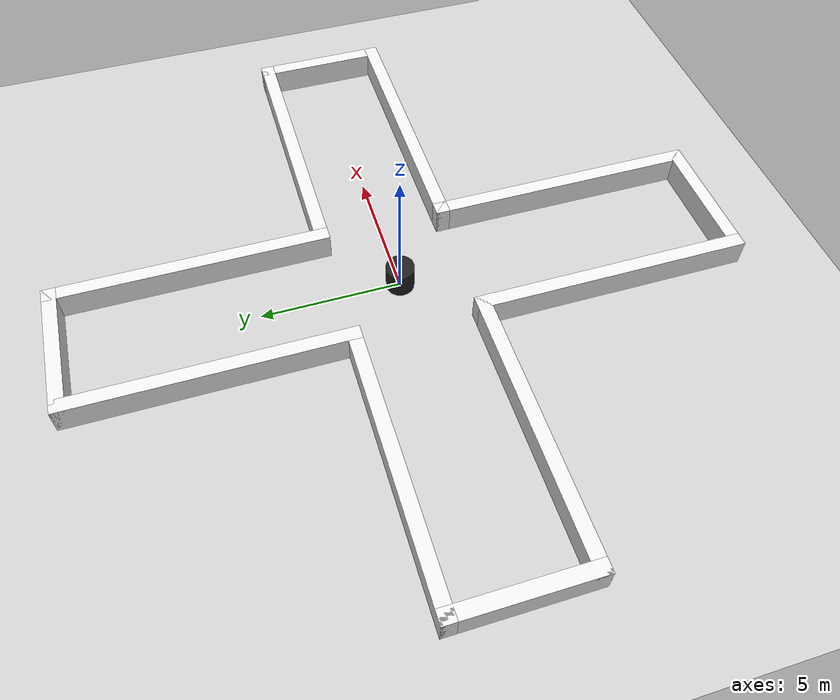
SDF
<?xml version="1.0"?>
<sdf version='1.6'>
  <world name='default'>
    <light name='sun' type='directional'>
      <cast_shadows>1</cast_shadows>
      <pose frame=''>0 0 10 0 -0 0</pose>
      <diffuse>0.8 0.8 0.8 1</diffuse>
      <specular>0.1 0.1 0.1 1</specular>
      <attenuation>
        <range>1000</range>
        <constant>0.9</constant>
        <linear>0.01</linear>
        <quadratic>0.001</quadratic>
      </attenuation>
      <direction>-0.5 0.5 -1</direction>
    </light>
    <model name='ground_plane'>
      <static>1</static>
      <link name='link'>
        <collision name='collision'>
          <geometry>
            <plane>
              <normal>0 0 1</normal>
              <size>100 100</size>
            </plane>
          </geometry>
          <surface>
            <friction>
              <ode>
                <mu>100</mu>
                <mu2>50</mu2>
              </ode>
              <torsional>
                <ode/>
              </torsional>
            </friction>
            <contact>
              <ode/>
            </contact>
            <bounce/>
          </surface>
          <max_contacts>10</max_contacts>
        </collision>
        <visual name='visual'>
          <cast_shadows>0</cast_shadows>
          <geometry>
            <plane>
              <normal>0 0 1</normal>
              <size>100 100</size>
            </plane>
          </geometry>
          <material>
            <script>
              <uri>file://media/materials/scripts/gazebo.material</uri>
              <name>Gazebo/Grey</name>
            </script>
          </material>
        </visual>
        <self_collide>0</self_collide>
        <kinematic>0</kinematic>
        <gravity>1</gravity>
      </link>
    </model>
    <gravity>0 0 -9.8</gravity>
    <magnetic_field>6e-06 2.3e-05 -4.2e-05</magnetic_field>
    <atmosphere type='adiabatic'/>
    <physics name='default_physics' default='0' type='ode'>
      <max_step_size>0.001</max_step_size>
      <real_time_factor>1</real_time_factor>
      <real_time_update_rate>1000</real_time_update_rate>
    </physics>
    <scene>
      <ambient>0.4 0.4 0.4 1</ambient>
      <background>0.7 0.7 0.7 1</background>
      <shadows>1</shadows>
    </scene>
    <spherical_coordinates>
      <surface_model>EARTH_WGS84</surface_model>
      <latitude_deg>0</latitude_deg>
      <longitude_deg>0</longitude_deg>
      <elevation>0</elevation>
      <heading_deg>0</heading_deg>
    </spherical_coordinates>

    <model name='L1'>
      <static>1</static>
      <link name='chassis_L1'>
        <pose frame=''>0 0 0.5 0 0 0</pose>
        <collision name='collision'>
          <geometry>
            <box>
              <size>10 0.5 1</size>
            </box>
          </geometry>
          <max_contacts>10</max_contacts>
          <surface>
            <contact>
              <ode/>
            </contact>
            <bounce/>
            <friction>
              <torsional>
                <ode/>
              </torsional>
              <ode/>
            </friction>
          </surface>
        </collision>
        <visual name='visual'>
          <geometry>
            <box>
              <size>10 0.5 1</size>
            </box>
          </geometry>
          <material>
            <script>
              <uri>file://media/materials/scripts/gazebo.material</uri>
              <name>Gazebo/White</name>
            </script>
          </material>
        </visual>
        <self_collide>0</self_collide>
        <kinematic>0</kinematic>
        <gravity>1</gravity>
      </link>
      <pose frame=''>7 2.25 0 0 0 0</pose>
    </model>

    <model name='R1'>
      <static>1</static>
      <link name='chassis_R1'>
        <pose frame=''>0 0 0.5 0 0 0</pose>
        <collision name='collision'>
          <geometry>
            <box>
              <size>10 0.5 1</size>
            </box>
          </geometry>
          <max_contacts>10</max_contacts>
          <surface>
            <contact>
              <ode/>
            </contact>
            <bounce/>
            <friction>
              <torsional>
                <ode/>
              </torsional>
              <ode/>
            </friction>
          </surface>
        </collision>
        <visual name='visual'>
          <geometry>
            <box>
              <size>10 0.5 1</size>
            </box>
          </geometry>
          <material>
            <script>
              <uri>file://media/materials/scripts/gazebo.material</uri>
              <name>Gazebo/White</name>
            </script>
          </material>
        </visual>
        <self_collide>0</self_collide>
        <kinematic>0</kinematic>
        <gravity>1</gravity>
      </link>
      <pose frame=''>7 -2.25 0 0 0 0</pose>
    </model>

    <model name='RB1'>
      <static>1</static>
      <link name='chassis_RB1'>
        <pose frame=''>0 0 0.5 0 0 0</pose>
        <collision name='collision'>
          <geometry>
            <box>
              <size>0.5 10 1</size>
            </box>
          </geometry>
          <max_contacts>10</max_contacts>
          <surface>
            <contact>
              <ode/>
            </contact>
            <bounce/>
            <friction>
              <torsional>
                <ode/>
              </torsional>
              <ode/>
            </friction>
          </surface>
        </collision>
        <visual name='visual'>
          <geometry>
            <box>
              <size>0.5 10 1</size>
            </box>
          </geometry>
          <material>
            <script>
              <uri>file://media/materials/scripts/gazebo.material</uri>
              <name>Gazebo/White</name>
            </script>
          </material>
        </visual>
        <self_collide>0</self_collide>
        <kinematic>0</kinematic>
        <gravity>1</gravity>
      </link>
      <pose frame=''>2.25 -7 0 0 0 0</pose>
    </model>

    <model name='LB1'>
      <static>1</static>
      <link name='chassis_LB1'>
        <pose frame=''>0 0 0.5 0 0 0</pose>
        <collision name='collision'>
          <geometry>
            <box>
              <size>0.5 10 1</size>
            </box>
          </geometry>
          <max_contacts>10</max_contacts>
          <surface>
            <contact>
              <ode/>
            </contact>
            <bounce/>
            <friction>
              <torsional>
                <ode/>
              </torsional>
              <ode/>
            </friction>
          </surface>
        </collision>
        <visual name='visual'>
          <geometry>
            <box>
              <size>0.5 10 1</size>
            </box>
          </geometry>
          <material>
            <script>
              <uri>file://media/materials/scripts/gazebo.material</uri>
              <name>Gazebo/White</name>
            </script>
          </material>
        </visual>
        <self_collide>0</self_collide>
        <kinematic>0</kinematic>
        <gravity>1</gravity>
      </link>
      <pose frame=''>2.25 7 0 0 0 0</pose>
    </model>

    <model name='L2'>
      <static>1</static>
      <link name='chassis_L2'>
        <pose frame=''>0 0 0.5 0 0 0</pose>
        <collision name='collision'>
          <geometry>
            <box>
              <size>10 0.5 1</size>
            </box>
          </geometry>
          <max_contacts>10</max_contacts>
          <surface>
            <contact>
              <ode/>
            </contact>
            <bounce/>
            <friction>
              <torsional>
                <ode/>
              </torsional>
              <ode/>
            </friction>
          </surface>
        </collision>
        <visual name='visual'>
          <geometry>
            <box>
              <size>10 0.5 1</size>
            </box>
          </geometry>
          <material>
            <script>
              <uri>file://media/materials/scripts/gazebo.material</uri>
              <name>Gazebo/White</name>
            </script>
          </material>
        </visual>
        <self_collide>0</self_collide>
        <kinematic>0</kinematic>
        <gravity>1</gravity>
      </link>
      <pose frame=''>-7 2.25 0 0 0 0</pose>
    </model>

    <model name='R2'>
      <static>1</static>
      <link name='chassis_R2'>
        <pose frame=''>0 0 0.5 0 0 0</pose>
        <collision name='collision'>
          <geometry>
            <box>
              <size>10 0.5 1</size>
            </box>
          </geometry>
          <max_contacts>10</max_contacts>
          <surface>
            <contact>
              <ode/>
            </contact>
            <bounce/>
            <friction>
              <torsional>
                <ode/>
              </torsional>
              <ode/>
            </friction>
          </surface>
        </collision>
        <visual name='visual'>
          <geometry>
            <box>
              <size>10 0.5 1</size>
            </box>
          </geometry>
          <material>
            <script>
              <uri>file://media/materials/scripts/gazebo.material</uri>
              <name>Gazebo/White</name>
            </script>
          </material>
        </visual>
        <self_collide>0</self_collide>
        <kinematic>0</kinematic>
        <gravity>1</gravity>
      </link>
      <pose frame=''>-7 -2.25 0 0 0 0</pose>
    </model>

    <model name='RB2'>
      <static>1</static>
      <link name='chassis_RB2'>
        <pose frame=''>0 0 0.5 0 0 0</pose>
        <collision name='collision'>
          <geometry>
            <box>
              <size>0.5 10 1</size>
            </box>
          </geometry>
          <max_contacts>10</max_contacts>
          <surface>
            <contact>
              <ode/>
            </contact>
            <bounce/>
            <friction>
              <torsional>
                <ode/>
              </torsional>
              <ode/>
            </friction>
          </surface>
        </collision>
        <visual name='visual'>
          <geometry>
            <box>
              <size>0.5 10 1</size>
            </box>
          </geometry>
          <material>
            <script>
              <uri>file://media/materials/scripts/gazebo.material</uri>
              <name>Gazebo/White</name>
            </script>
          </material>
        </visual>
        <self_collide>0</self_collide>
        <kinematic>0</kinematic>
        <gravity>1</gravity>
      </link>
      <pose frame=''>-2.25 -7 0 0 0 0</pose>
    </model>

    <model name='LB2'>
      <static>1</static>
      <link name='chassis_LB2'>
        <pose frame=''>0 0 0.5 0 0 0</pose>
        <collision name='collision'>
          <geometry>
            <box>
              <size>0.5 10 1</size>
            </box>
          </geometry>
          <max_contacts>10</max_contacts>
          <surface>
            <contact>
              <ode/>
            </contact>
            <bounce/>
            <friction>
              <torsional>
                <ode/>
              </torsional>
              <ode/>
            </friction>
          </surface>
        </collision>
        <visual name='visual'>
          <geometry>
            <box>
              <size>0.5 10 1</size>
            </box>
          </geometry>
          <material>
            <script>
              <uri>file://media/materials/scripts/gazebo.material</uri>
              <name>Gazebo/White</name>
            </script>
          </material>
        </visual>
        <self_collide>0</self_collide>
        <kinematic>0</kinematic>
        <gravity>1</gravity>
      </link>
      <pose frame=''>-2.25 7 0 0 0 0</pose>
    </model>

    <model name='OBS'>
      <static>1</static>
      <link name='chassis_OBS'>
        <pose frame=''>0 0 0.5 0 0 0</pose>
        <collision name='collision'>
          <geometry>
          <cylinder>
            <radius>0.5</radius>
            <length>1.0</length>
          </cylinder>
          </geometry>
          <max_contacts>10</max_contacts>
          <surface>
            <contact>
              <ode/>
            </contact>
            <bounce/>
            <friction>
              <torsional>
                <ode/>
              </torsional>
              <ode/>
            </friction>
          </surface>
        </collision>
        <visual name='visual'>
          <geometry>
          <cylinder>
            <radius>0.5</radius>
            <length>1.0</length>
          </cylinder>
          </geometry>
          <material>
            <script>
              <uri>file://media/materials/scripts/gazebo.material</uri>
              <name>Gazebo/Black</name>
            </script>
          </material>
        </visual>
        <self_collide>0</self_collide>
        <kinematic>0</kinematic>
        <gravity>1</gravity>
      </link>
      <pose frame=''>0 0 0 0 0 0</pose>
    </model>

    <model name='L0'>
      <static>1</static>
      <link name='chassis_L0'>
        <pose frame=''>0 0 0.5 0 0 0</pose>
        <collision name='collision'>
          <geometry>
            <box>
              <size>5 0.5 1</size>
            </box>
          </geometry>
          <max_contacts>10</max_contacts>
          <surface>
            <contact>
              <ode/>
            </contact>
            <bounce/>
            <friction>
              <torsional>
                <ode/>
              </torsional>
              <ode/>
            </friction>
          </surface>
        </collision>
        <visual name='visual'>
          <geometry>
            <box>
              <size>5 0.5 1</size>
            </box>
          </geometry>
          <material>
            <script>
              <uri>file://media/materials/scripts/gazebo.material</uri>
              <name>Gazebo/White</name>
            </script>
          </material>
        </visual>
        <self_collide>0</self_collide>
        <kinematic>0</kinematic>
        <gravity>1</gravity>
      </link>
      <pose frame=''>0 -11.75 0 0 0 0</pose>
    </model>
    <model name='R0'>
      <static>1</static>
      <link name='chassis_R0'>
        <pose frame=''>0 0 0.5 0 0 0</pose>
        <collision name='collision'>
          <geometry>
            <box>
              <size>5 0.5 1</size>
            </box>
          </geometry>
          <max_contacts>10</max_contacts>
          <surface>
            <contact>
              <ode/>
            </contact>
            <bounce/>
            <friction>
              <torsional>
                <ode/>
              </torsional>
              <ode/>
            </friction>
          </surface>
        </collision>
        <visual name='visual'>
          <geometry>
            <box>
              <size>5 0.5 1</size>
            </box>
          </geometry>
          <material>
            <script>
              <uri>file://media/materials/scripts/gazebo.material</uri>
              <name>Gazebo/White</name>
            </script>
          </material>
        </visual>
        <self_collide>0</self_collide>
        <kinematic>0</kinematic>
        <gravity>1</gravity>
      </link>
      <pose frame=''>0 11.75 0 0 0 0</pose>
    </model>
    <model name='T0'>
      <static>1</static>
      <link name='chassis_T0'>
        <pose frame=''>0 0 0.5 0 0 0</pose>
        <collision name='collision'>
          <geometry>
            <box>
              <size>0.5 5 1</size>
            </box>
          </geometry>
          <max_contacts>10</max_contacts>
          <surface>
            <contact>
              <ode/>
            </contact>
            <bounce/>
            <friction>
              <torsional>
                <ode/>
              </torsional>
              <ode/>
            </friction>
          </surface>
        </collision>
        <visual name='visual'>
          <geometry>
            <box>
              <size>0.5 5 1</size>
            </box>
          </geometry>
          <material>
            <script>
              <uri>file://media/materials/scripts/gazebo.material</uri>
              <name>Gazebo/White</name>
            </script>
          </material>
        </visual>
        <self_collide>0</self_collide>
        <kinematic>0</kinematic>
        <gravity>1</gravity>
      </link>
      <pose frame=''>11.75 -0 0 0 0 0</pose>
    </model>
    <model name='B0'>
      <static>1</static>
      <link name='chassis_B0'>
        <pose frame=''>0 0 0.5 0 0 0</pose>
        <collision name='collision'>
          <geometry>
            <box>
              <size>0.5 5 1</size>
            </box>
          </geometry>
          <max_contacts>10</max_contacts>
          <surface>
            <contact>
              <ode/>
            </contact>
            <bounce/>
            <friction>
              <torsional>
                <ode/>
              </torsional>
              <ode/>
            </friction>
          </surface>
        </collision>
        <visual name='visual'>
          <geometry>
            <box>
              <size>0.5 5 1</size>
            </box>
          </geometry>
          <material>
            <script>
              <uri>file://media/materials/scripts/gazebo.material</uri>
              <name>Gazebo/White</name>
            </script>
          </material>
        </visual>
        <self_collide>0</self_collide>
        <kinematic>0</kinematic>
        <gravity>1</gravity>
      </link>
      <pose frame=''>-11.75 0 0 0 0 0</pose>
    </model>

    <model name='pin'>
    <link name='link_0'>
      <pose frame=''>0 0 0 0 -0 0</pose>
      <inertial>
        <mass>0.1</mass>
        <inertia>
          <ixx>0.145833</ixx>
          <ixy>0</ixy>
          <ixz>0</ixz>
          <iyy>0.145833</iyy>
          <iyz>0</iyz>
          <izz>0.125</izz>
        </inertia>
        <pose frame=''>0 0 0 0 -0 0</pose>
      </inertial>
      <gravity>1</gravity>
      <self_collide>0</self_collide>
      <kinematic>0</kinematic>
      <visual name='visual'>
        <pose frame=''>0 0 0 0 -0 0</pose>
        <geometry>
          <cylinder>
            <radius>0.05</radius>
            <length>0.1</length>
          </cylinder>
        </geometry>
        <material>
          <lighting>1</lighting>
          <script>
            <uri>file://media/materials/scripts/gazebo.material</uri>
            <name>Gazebo/Green</name>
          </script>
          <emissive>0 0 0 1</emissive>
          <shader type='vertex'>
            <normal_map>__default__</normal_map>
          </shader>
        </material>
        <cast_shadows>1</cast_shadows>
        <transparency>0</transparency>
      </visual>
      <collision name='collision'>
        <laser_retro>0</laser_retro>
        <max_contacts>10</max_contacts>
        <pose frame=''>0 -0 -0.05 0 -0 0</pose>
        <geometry>
          <cylinder>
            <radius>0.1</radius>
            <length>0.0001</length>
          </cylinder>
        </geometry>
        <surface>
          <friction>
            <ode>
              <mu>1</mu>
              <mu2>1</mu2>
              <fdir1>0 0 0</fdir1>
              <slip1>0</slip1>
              <slip2>0</slip2>
            </ode>
            <torsional>
              <coefficient>1</coefficient>
              <patch_radius>0</patch_radius>
              <surface_radius>0</surface_radius>
              <use_patch_radius>1</use_patch_radius>
              <ode>
                <slip>0</slip>
              </ode>
            </torsional>
          </friction>
          <bounce>
            <restitution_coefficient>0</restitution_coefficient>
            <threshold>1e+06</threshold>
          </bounce>
          <contact>
            <collide_without_contact>0</collide_without_contact>
            <collide_without_contact_bitmask>1</collide_without_contact_bitmask>
            <collide_bitmask>1</collide_bitmask>
            <ode>
              <soft_cfm>0</soft_cfm>
              <soft_erp>0.2</soft_erp>
              <kp>1e+13</kp>
              <kd>1</kd>
              <max_vel>0.01</max_vel>
              <min_depth>0</min_depth>
            </ode>
            <bullet>
              <split_impulse>1</split_impulse>
              <split_impulse_penetration_threshold>-0.01</split_impulse_penetration_threshold>
              <soft_cfm>0</soft_cfm>
              <soft_erp>0.2</soft_erp>
              <kp>1e+13</kp>
              <kd>1</kd>
            </bullet>
          </contact>
        </surface>
      </collision>
    </link>
    <link name='link_1'>
      <pose frame=''>0 0 0.05 0 -0 0</pose>
      <inertial>
        <mass>0.01</mass>
        <inertia>
          <ixx>0.1</ixx>
          <ixy>0</ixy>
          <ixz>0</ixz>
          <iyy>0.1</iyy>
          <iyz>0</iyz>
          <izz>0.1</izz>
        </inertia>
        <pose frame=''>0 0 0 0 -0 0</pose>
      </inertial>
      <gravity>1</gravity>
      <self_collide>0</self_collide>
      <kinematic>0</kinematic>
      <visual name='visual'>
        <pose frame=''>0 0 0 0 -0 0</pose>
        <geometry>
          <sphere>
            <radius>0.1</radius>
          </sphere>
        </geometry>
        <material>
          <lighting>1</lighting>
          <script>
            <uri>file://media/materials/scripts/gazebo.material</uri>
            <name>Gazebo/Red</name>
          </script>
          <emissive>0 0 0 1</emissive>
          <shader type='vertex'>
            <normal_map>__default__</normal_map>
          </shader>
        </material>
        <cast_shadows>1</cast_shadows>
        <transparency>0</transparency>
      </visual>
      <collision name='collision'>
        <laser_retro>0</laser_retro>
        <max_contacts>10</max_contacts>
        <pose frame=''>0 0 3 0 -0 0</pose>
        <geometry>
          <sphere>
            <radius>0.01</radius>
          </sphere>
        </geometry>
        <surface>
          <friction>
            <ode>
              <mu>1</mu>
              <mu2>1</mu2>
              <fdir1>0 0 0</fdir1>
              <slip1>0</slip1>
              <slip2>0</slip2>
            </ode>
            <torsional>
              <coefficient>1</coefficient>
              <patch_radius>0</patch_radius>
              <surface_radius>0</surface_radius>
              <use_patch_radius>1</use_patch_radius>
              <ode>
                <slip>0</slip>
              </ode>
            </torsional>
          </friction>
          <bounce>
            <restitution_coefficient>0</restitution_coefficient>
            <threshold>1e+06</threshold>
          </bounce>
          <contact>
            <collide_without_contact>0</collide_without_contact>
            <collide_without_contact_bitmask>1</collide_without_contact_bitmask>
            <collide_bitmask>1</collide_bitmask>
            <ode>
              <soft_cfm>0</soft_cfm>
              <soft_erp>0.2</soft_erp>
              <kp>1e+13</kp>
              <kd>1</kd>
              <max_vel>0.01</max_vel>
              <min_depth>0</min_depth>
            </ode>
            <bullet>
              <split_impulse>1</split_impulse>
              <split_impulse_penetration_threshold>-0.01</split_impulse_penetration_threshold>
              <soft_cfm>0</soft_cfm>
              <soft_erp>0.2</soft_erp>
              <kp>1e+13</kp>
              <kd>1</kd>
            </bullet>
          </contact>
        </surface>
      </collision>
    </link>
    <joint name='link_1_JOINT_0' type='fixed'>
      <parent>link_1</parent>
      <child>link_0</child>
      <pose frame=''>0 0 0 0 -0 0</pose>
      <physics>
        <ode>
          <limit>
            <cfm>0</cfm>
            <erp>0.2</erp>
          </limit>
          <suspension>
            <cfm>0</cfm>
            <erp>0.2</erp>
          </suspension>
        </ode>
      </physics>
    </joint>
    <static>0</static>
    <allow_auto_disable>1</allow_auto_disable>
  </model>

    <gui fullscreen='0'>
      <camera name='user_camera'>
        <pose frame=''>-1.2e-05 -0.000194 23.575 2.79315 1.57079 2.79315</pose>
        <view_controller>orbit</view_controller>
        <projection_type>perspective</projection_type>
      </camera>
    </gui>
  </world>
</sdf>
